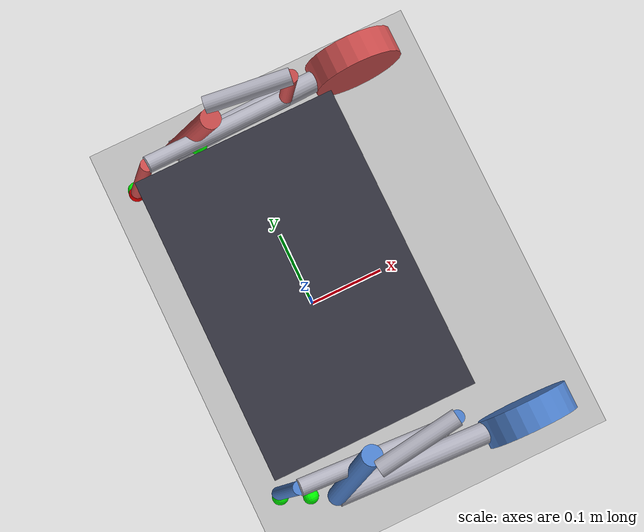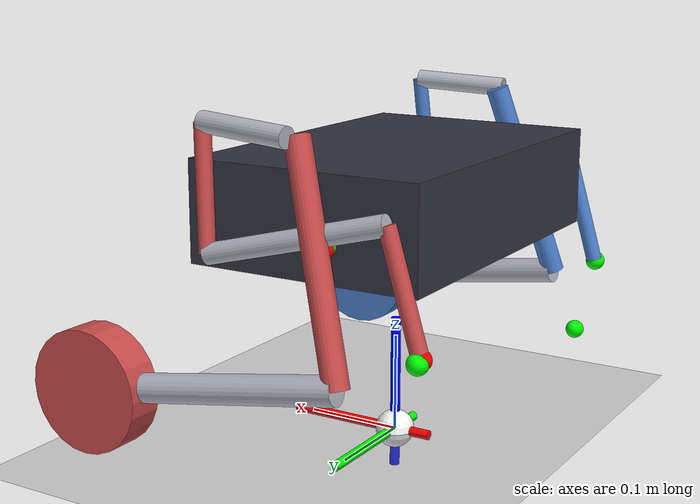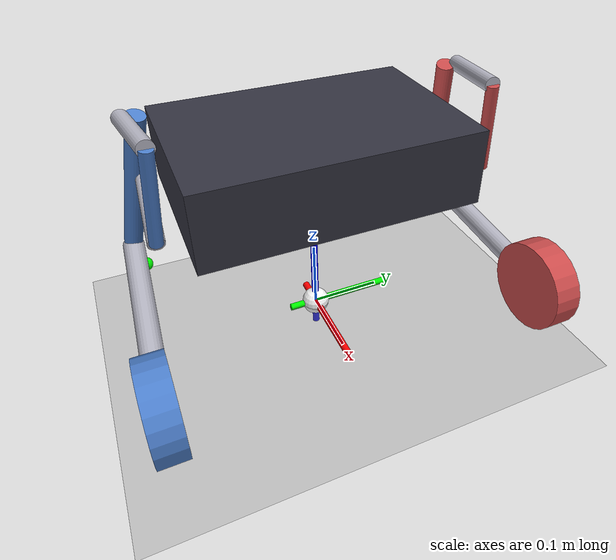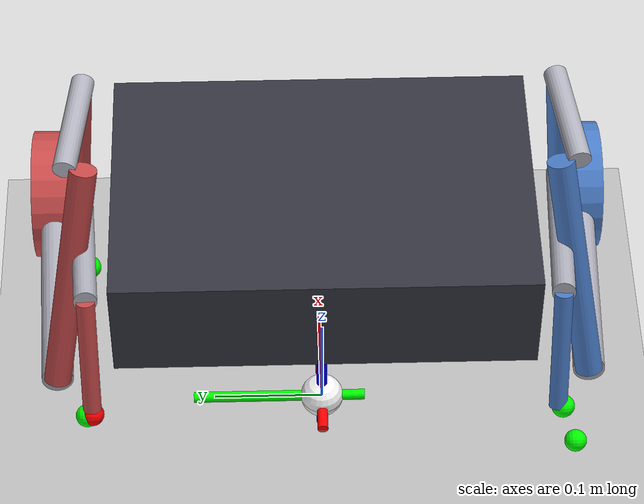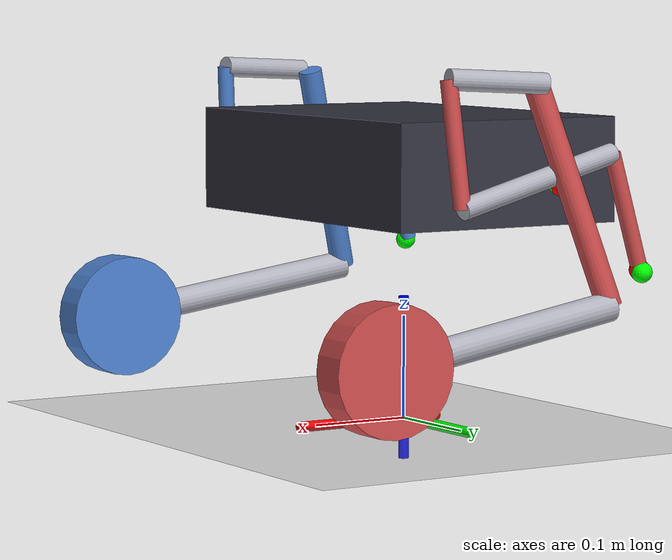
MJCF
<?xml version="1.0" encoding="utf-8"?>
<!--
  原始 MJCF/env.xml 的几何替身版本：用 cylinder/box 等基本体替代 STL mesh。
  与 MJCF/env.xml 完全兼容：保留同名 joint/actuator/sensor/site，
  Simulation.py 只需把模型路径切到 MJCF_primitive/env.xml 即可无缝切换。
-->
<mujoco model="inverted_pendulum_primitive">
    <compiler angle="radian" autolimits="true" />
    <option timestep="0.001" gravity="0 0 -9.81" integrator="implicitfast" density="1.225"
        viscosity="1.8e-5" />

    <visual>
        <global realtime="1" />
        <quality shadowsize="16384" numslices="28" offsamples="4" />
        <headlight diffuse="0.5 0.5 0.5" specular="0.2 0.2 0.2" active="1" />
    </visual>
    <include file="robot_primitive.xml"/>

    <asset>
        <texture type="skybox" file="../MJCF/desert.png"
            gridsize="3 4" gridlayout=".U..LFRB.D.." />
        <texture name="plane" type="2d" builtin="checker" rgb1=".1 .1 .1" rgb2=".9 .9 .9"
            width="512" height="512" mark="cross" markrgb=".8 .8 .8" />
        <material name="plane" reflectance="0.3" texture="plane" texrepeat="1 1" texuniform="true"/>
    </asset>

    <worldbody>
        <geom name="floor" pos="0 0 0" size="0 0 .25" type="plane" material="plane" condim="3" />

        <site name="x_axis_cylinder" type="cylinder" size="0.005 0.08" pos="0.04 0 0"
              axisangle="0 1 0 1.57" rgba="1 0 0 1"/>
        <site name="y_axis_cylinder" type="cylinder" size="0.005 0.08" pos="0 0.04 0"
              axisangle="1 0 0 -1.57" rgba="0 1 0 1"/>
        <site name="z_axis_cylinder" type="cylinder" size="0.005 0.08" pos="0 0 0.04"
              rgba="0 0 1 1"/>
        <site name="origin" type="sphere" size="0.02" rgba="1 1 1 1"/>

        <light directional="true" ambient=".15 .15 .15" pos="30 30 30" dir="0 -.5 -1"
            diffuse=".3 .3 .3" specular=".3 .3 .3" />
    </worldbody>
</mujoco>

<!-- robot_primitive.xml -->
<mujoco model="GBC486_primitive">
  <default>
    <default class="touch">
        <geom contype="1" conaffinity="1" />
    </default>
    <default class="untouch">
        <geom contype="0" conaffinity="0" />
    </default>
  </default>
  <compiler angle="radian"/>

  <asset>
    <material name="base_mat" rgba="0.2 0.2 0.25 1" specular="0.5" shininess="0.5"/>
    <material name="arm_blue" rgba="0.3 0.5 0.8 1" specular="0.8" shininess="0.8"/>
    <material name="arm_red"  rgba="0.8 0.3 0.3 1" specular="0.8" shininess="0.8"/>
    <material name="joint_mat" rgba="0.7 0.7 0.75 1" specular="1.0" shininess="1.0"/>
    <material name="wheel_mat" rgba="0.15 0.15 0.2 1" specular="0.3" shininess="0.2"/>
  </asset>

  <worldbody>
    <body name="base" pos="0 0 0.2">
    <!-- "扣雷挖及悠打"，注释下面这行代码可以让车身悬浮在空中 -->
      <joint name="base_free" type="free"/>
      <site name="imu" type="box" size="0.002 0.002 0.002" rgba="1 1 0 1"/>
      <!-- 车身：长方体，尺寸取自原 base_link mesh 大致包围盒 -->
      <geom name="base_box" type="box" size="0.12 0.18 0.05" pos="0 0 0.05"
            material="base_mat" class="touch" mass="8.4"/>

      <!-- ============ 右腿臂（蓝色系，rear: AG-GH） ============ -->
      <body name="AG" pos="-0.01375 -0.1995 0.134" quat="0.707105 0.707108 0 0">
        <joint name="jAG" pos="0 0 0" axis="0 0 1" range="-1.57 0.3"/>
        <site name="AG-D" pos="-0.027 -0.094 0" size="0.002" rgba="0 1 0 1"/>
        <geom type="cylinder" fromto="0 0 0  -0.060152 -0.20641 0.0345" size="0.012"
              material="arm_blue" class="untouch" mass="0.667"/>

        <body name="GH" pos="-0.060152 -0.20641 0.0345">
          <joint name="jGH" pos="0 0 0" axis="0 0 1" range="-0.85 1"/>
          <site name="GH-F" pos="-0.0604 0.0259 -0.03" size="0.01" rgba="0 1 0 1"/>
          <site name="GH-little_wheel" pos="-0.033 -0.062 -0.01" size="0.01" rgba="0 1 0 1"/>
          <geom type="cylinder" fromto="0 0 0  0.25495 -0.039583 0.0155" size="0.014"
                material="joint_mat" class="touch" mass="1.64"/>

          <body name="wheel_right" pos="0.25495 -0.039583 0.0155">
            <joint name="jwheel_right" pos="0 0 0" axis="0 0 -1"/>
            <!-- 轮：cylinder 沿 body 局部 z 轴；与 jwheel_right 轴向一致 -->
            <geom type="cylinder" size="0.06 0.018" material="arm_blue"
                  class="touch" mass="0.322"/>
          </body>
        </body>
      </body>

      <!-- ============ 右腿臂（蓝色系，front: AB-BE-EC-CF） ============ -->
      <body name="AB" pos="-0.01375 -0.2155 0.134" quat="0.707105 0.707108 0 0">
        <joint name="jAB" pos="0 0 0" axis="0 0 1" range="-1.57 0.5"/>
        <geom type="cylinder" fromto="0 0 0  0.097866 0.0051238 -0.013" size="0.010"
              material="joint_mat" class="untouch" mass="0.202"/>

        <body name="BE" pos="0.097866 0.0051238 -0.013">
          <joint name="jBE" pos="0 0 0" axis="0 0 1"/>
          <geom type="cylinder" fromto="0 0 0  -0.0090761 -0.11725 0.0094" size="0.008"
                material="arm_blue" class="touch" mass="0.057"/>

          <body name="EC" pos="-0.0090761 -0.11725 0.0094">
            <joint name="jEC" pos="0 0 0" axis="0 0 -1"/>
            <site name="EC-D" pos="-0.115974 0.017382 -0.01" size="0.002" rgba="1 0 0 1"/>
            <geom type="cylinder" fromto="0 0 0  -0.17658 0.044698 -0.0124" size="0.010"
                  material="joint_mat" class="touch" mass="0.128"/>

            <body name="CF" pos="-0.17658 0.044698 -0.0124">
              <joint name="jCF" pos="0 0 0" axis="0 0 -1"/>
              <site name="CF-F" pos="-0.0332 -0.111 0" size="0.002" rgba="1 0 0 1"/>
              <geom type="cylinder" fromto="0 0 0  -0.0332 -0.111 0" size="0.008"
                    material="arm_blue" class="touch" mass="0.057"/>
            </body>
          </body>
        </body>
      </body>

      <!-- ============ 左腿（红色系，front: IJ-JM-MK-KN） ============ -->
      <body name="IJ" pos="-0.01375 0.2165 0.134" quat="0.707105 0.707108 0 0">
        <joint name="jIJ" pos="0 0 0" axis="0 0 -1" range="-0.5 1.57"/>
        <geom type="cylinder" fromto="0 0 0  0.097866 0.0051238 0.013" size="0.010"
              material="joint_mat" class="untouch" mass="0.202"/>

        <body name="JM" pos="0.097866 0.0051238 0.013">
          <joint name="jJM" pos="0 0 0" axis="0 0 -1"/>
          <geom type="cylinder" fromto="0 0 0  -0.0090761 -0.11725 -0.0094" size="0.008"
                material="arm_red" class="touch" mass="0.057"/>

          <body name="MK" pos="-0.0090761 -0.11725 -0.0094">
            <joint name="jMK" pos="0 0 0" axis="0 0 -1"/>
            <site name="MK-L" pos="-0.115974 0.017382 0.01" size="0.01" rgba="1 0 0 1"/>
            <geom type="cylinder" fromto="0 0 0  -0.17658 0.044698 0.0124" size="0.010"
                  material="joint_mat" class="touch" mass="0.128"/>

            <body name="KN" pos="-0.17658 0.044698 0.0124">
              <joint name="jKN" pos="0 0 0" axis="0 0 1"/>
              <site name="KN-N" pos="-0.0332 -0.111 0" size="0.01" rgba="1 0 0 1"/>
              <geom type="cylinder" fromto="0 0 0  -0.0332 -0.111 0" size="0.008"
                    material="arm_red" class="touch" mass="0.057"/>
            </body>
          </body>
        </body>
      </body>

      <!-- ============ 左腿（红色系，rear: IO-OP） ============ -->
      <body name="IO" pos="-0.01375 0.2005 0.134" quat="0.707105 0.707108 0 0">
        <joint name="jIO" pos="0 0 0" axis="0 0 -1" range="-0.3 1.57"/>
        <site name="IO-L" pos="-0.027 -0.094 0" size="0.01" rgba="0 1 0 1"/>
        <geom type="cylinder" fromto="0 0 0  -0.060152 -0.20641 -0.0345" size="0.012"
              material="arm_red" class="untouch" mass="0.667"/>

        <body name="OP" pos="-0.060152 -0.20641 -0.0345">
          <joint name="jOP" pos="0 0 0" axis="0 0 -1" range="-1 0.85"/>
          <site name="OP-N" pos="-0.0604 0.0259 0.03" size="0.01" rgba="0 1 0 1"/>
          <geom type="cylinder" fromto="0 0 0  0.25495 -0.039576 -0.0155" size="0.014"
                material="joint_mat" class="touch" mass="1.64"/>

          <body name="wheel_left" pos="0.25495 -0.039576 -0.0155">
            <joint name="jwheel_left" pos="0 0 0" axis="0 0 1"/>
            <geom type="cylinder" size="0.06 0.018" material="arm_red"
                  class="touch" mass="0.322"/>
          </body>
        </body>
      </body>
    </body>
  </worldbody>

  <equality>
    <connect name="right_D" site1="EC-D" site2="AG-D" solref="0.001 1" solimp="0.99 0.99 0.01 0.5 2"/>
    <connect name="right_F" site1="CF-F" site2="GH-F" solref="0.001 1" solimp="0.99 0.99 0.01 0.5 2"/>
    <connect name="left_L"  site1="IO-L" site2="MK-L" solref="0.001 1" solimp="0.99 0.99 0.01 0.5 2"/>
    <connect name="left_F"  site1="OP-N" site2="KN-N" solref="0.001 1" solimp="0.99 0.99 0.01 0.5 2"/>
  </equality>

  <actuator>
    <general name="Right_front_joint_act" joint="jAB"         gainprm="1"  ctrlrange="-20 +20"/>
    <general name="Right_rear_joint_act"  joint="jAG"         gainprm="1"  ctrlrange="-20 +20"/>
    <general name="Left_front_joint_act"  joint="jIJ"         gainprm="1"  ctrlrange="-20 +20"/>
    <general name="Left_rear_joint_act"   joint="jIO"         gainprm="1"  ctrlrange="-20 +20"/>
    <general name="Right_Wheel_act"       joint="jwheel_right" gainprm="1"  ctrlrange="-4 +4"/>
    <general name="Left_Wheel_act"        joint="jwheel_left"  gainprm="-1" ctrlrange="-4 +4"/>
  </actuator>

  <sensor>
    <framequat name='orientation' objtype='site' objname='imu'/>
    <gyro      name='gyro'        site='imu'/>
    <jointpos joint="jwheel_right" name="Right_Wheel_pos"/>
    <jointpos joint="jwheel_left"  name="Left_Wheel_pos"/>
    <jointpos joint="jAB" name="Right_front_joint_pos"/>
    <jointpos joint="jAG" name="Right_rear_joint_pos"/>
    <jointpos joint="jIJ" name="Left_front_joint_pos"/>
    <jointpos joint="jIO" name="Left_rear_joint_pos"/>
  </sensor>
</mujoco>
